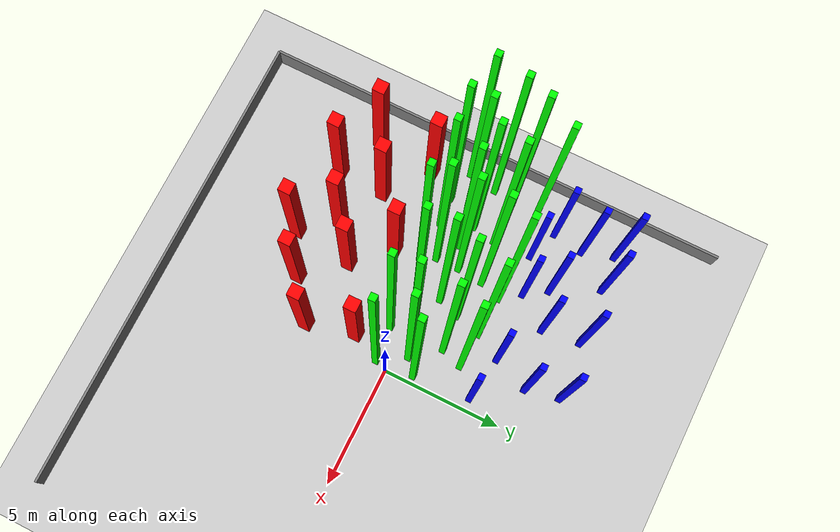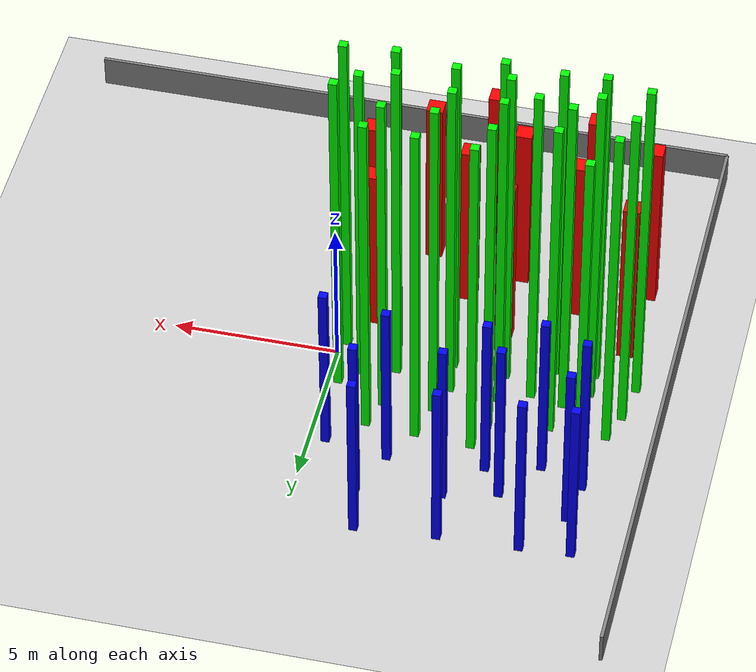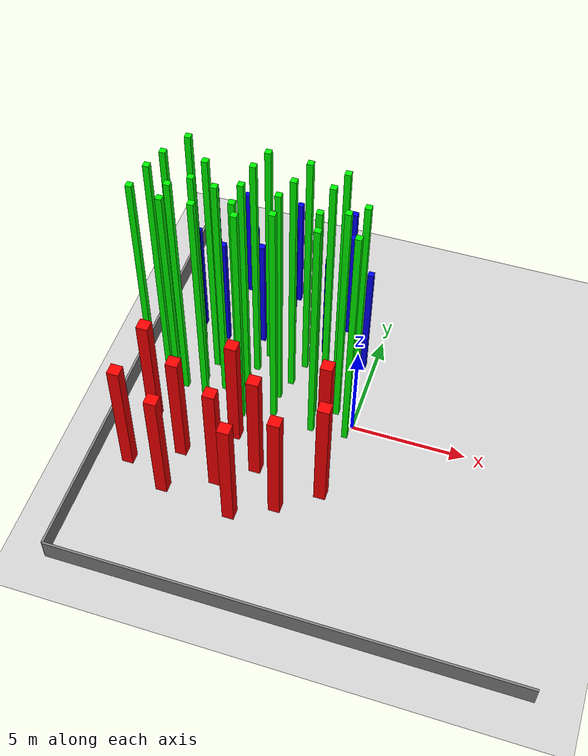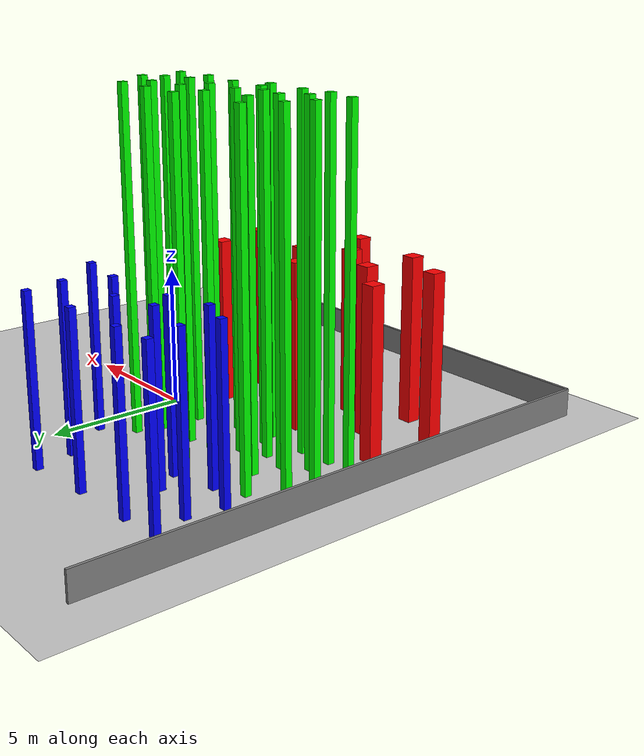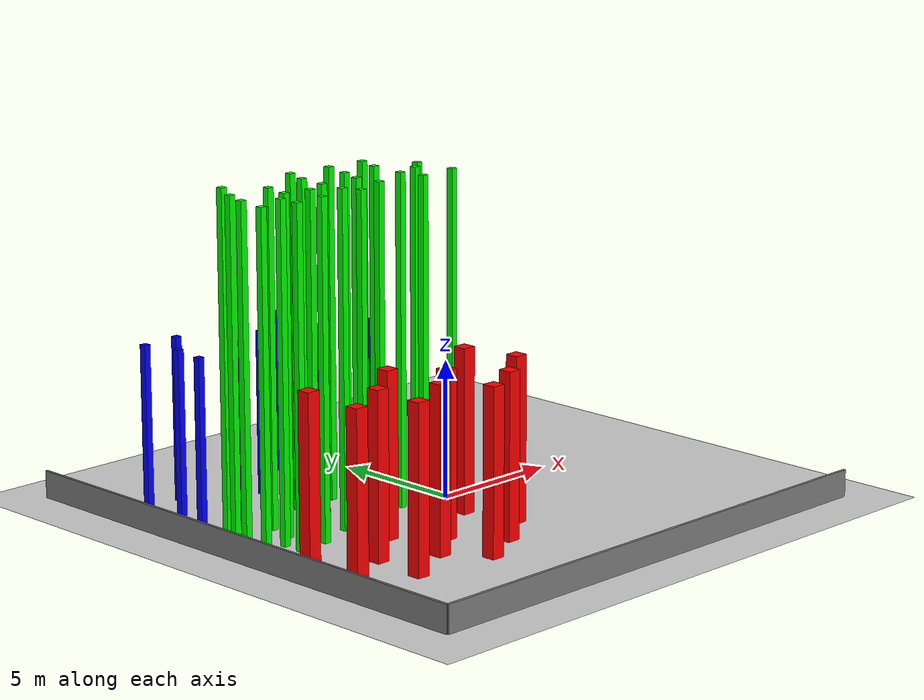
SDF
<sdf version="1.9">
 <world name="Penglai">
  <model name="ground_plane">
   <static>true</static>
   <link name="link">
    <collision name="collision">
     <geometry><plane><normal>0 0 1</normal><size>100 100</size></plane></geometry>
    </collision>
    <visual name="visual">
     <geometry><plane><normal>0 0 1</normal><size>100 100</size></plane></geometry>
     <material>
      <ambient>0.8 0.8 0.8 1</ambient>
      <diffuse>0.8 0.8 0.8 1</diffuse>
      <specular>0.8 0.8 0.8 1</specular>
     </material>
    </visual>
    <inertial>
     <mass>1</mass>
     <inertia><ixx>1</ixx><ixy>0</ixy><ixz>0</ixz><iyy>1</iyy><iyz>0</iyz><izz>1</izz></inertia>
    </inertial>
   </link>
  </model>
  <model name="wall_1">
   <static>true</static>
   <type>wall</type>
   <pose>0.000000 -10.000000 0.500000 0 0 0.000000</pose>
   <link name="link">
    <collision name="collision">
     <geometry><box><size>20.000000 0.100000 1.000000</size></box></geometry>
    </collision>
    <visual name="visual">
     <geometry><box><size>20.000000 0.100000 1.000000</size></box></geometry>
     <material><diffuse>0.5 0.5 0.5 1</diffuse></material>
    </visual>
   </link>
  </model>
  <model name="wall_4">
   <static>true</static>
   <type>wall</type>
   <pose>-10.000000 0.000000 0.500000 0 0 -1.570796</pose>
   <link name="link">
    <collision name="collision">
     <geometry><box><size>20.000000 0.100000 1.000000</size></box></geometry>
    </collision>
    <visual name="visual">
     <geometry><box><size>20.000000 0.100000 1.000000</size></box></geometry>
     <material><diffuse>0.5 0.5 0.5 1</diffuse></material>
    </visual>
   </link>
  </model>
  <model name="box_1">
   <static>true</static>
   <type>box</type>
   <pose>-4.300000 4.900000 3.000000 0 0 0</pose>
   <link name="link">
    <collision name="collision">
     <geometry><box><size>0.250000 0.250000 6.000000</size></box></geometry>
    </collision>
    <visual name="visual">
     <geometry><box><size>0.250000 0.250000 6.000000</size></box></geometry>
     <material><diffuse>0 0 1 1</diffuse></material>
    </visual>
   </link>
  </model>
  <model name="box_2">
   <static>true</static>
   <type>box</type>
   <pose>-4.500000 6.500000 3.000000 0 0 0</pose>
   <link name="link">
    <collision name="collision">
     <geometry><box><size>0.250000 0.250000 6.000000</size></box></geometry>
    </collision>
    <visual name="visual">
     <geometry><box><size>0.250000 0.250000 6.000000</size></box></geometry>
     <material><diffuse>0 0 1 1</diffuse></material>
    </visual>
   </link>
  </model>
  <model name="box_3">
   <static>true</static>
   <type>box</type>
   <pose>-5.900000 4.500000 3.000000 0 0 0</pose>
   <link name="link">
    <collision name="collision">
     <geometry><box><size>0.250000 0.250000 6.000000</size></box></geometry>
    </collision>
    <visual name="visual">
     <geometry><box><size>0.250000 0.250000 6.000000</size></box></geometry>
     <material><diffuse>0 0 1 1</diffuse></material>
    </visual>
   </link>
  </model>
  <model name="box_4">
   <static>true</static>
   <type>box</type>
   <pose>-2.400000 3.800000 3.000000 0 0 0</pose>
   <link name="link">
    <collision name="collision">
     <geometry><box><size>0.250000 0.250000 6.000000</size></box></geometry>
    </collision>
    <visual name="visual">
     <geometry><box><size>0.250000 0.250000 6.000000</size></box></geometry>
     <material><diffuse>0 0 1 1</diffuse></material>
    </visual>
   </link>
  </model>
  <model name="box_5">
   <static>true</static>
   <type>box</type>
   <pose>-1.800000 5.300000 3.000000 0 0 0</pose>
   <link name="link">
    <collision name="collision">
     <geometry><box><size>0.250000 0.250000 6.000000</size></box></geometry>
    </collision>
    <visual name="visual">
     <geometry><box><size>0.250000 0.250000 6.000000</size></box></geometry>
     <material><diffuse>0 0 1 1</diffuse></material>
    </visual>
   </link>
  </model>
  <model name="box_17">
   <static>true</static>
   <type>box</type>
   <pose>-6.900000 6.400000 3.000000 0 0 0</pose>
   <link name="link">
    <collision name="collision">
     <geometry><box><size>0.250000 0.250000 6.000000</size></box></geometry>
    </collision>
    <visual name="visual">
     <geometry><box><size>0.250000 0.250000 6.000000</size></box></geometry>
     <material><diffuse>0 0 1 1</diffuse></material>
    </visual>
   </link>
  </model>
  <model name="box_18">
   <static>true</static>
   <type>box</type>
   <pose>-8.000000 5.000000 3.000000 0 0 0</pose>
   <link name="link">
    <collision name="collision">
     <geometry><box><size>0.250000 0.250000 6.000000</size></box></geometry>
    </collision>
    <visual name="visual">
     <geometry><box><size>0.250000 0.250000 6.000000</size></box></geometry>
     <material><diffuse>0 0 1 1</diffuse></material>
    </visual>
   </link>
  </model>
  <model name="box_19">
   <static>true</static>
   <type>box</type>
   <pose>-8.400000 6.300000 3.000000 0 0 0</pose>
   <link name="link">
    <collision name="collision">
     <geometry><box><size>0.250000 0.250000 6.000000</size></box></geometry>
    </collision>
    <visual name="visual">
     <geometry><box><size>0.250000 0.250000 6.000000</size></box></geometry>
     <material><diffuse>0 0 1 1</diffuse></material>
    </visual>
   </link>
  </model>
  <model name="box_20">
   <static>true</static>
   <type>box</type>
   <pose>-8.200000 3.700000 3.000000 0 0 0</pose>
   <link name="link">
    <collision name="collision">
     <geometry><box><size>0.250000 0.250000 6.000000</size></box></geometry>
    </collision>
    <visual name="visual">
     <geometry><box><size>0.250000 0.250000 6.000000</size></box></geometry>
     <material><diffuse>0 0 1 1</diffuse></material>
    </visual>
   </link>
  </model>
  <model name="box_21">
   <static>true</static>
   <type>box</type>
   <pose>-5.300000 3.600000 3.000000 0 0 0</pose>
   <link name="link">
    <collision name="collision">
     <geometry><box><size>0.250000 0.250000 6.000000</size></box></geometry>
    </collision>
    <visual name="visual">
     <geometry><box><size>0.250000 0.250000 6.000000</size></box></geometry>
     <material><diffuse>0 0 1 1</diffuse></material>
    </visual>
   </link>
  </model>
  <model name="box_22">
   <static>true</static>
   <type>box</type>
   <pose>-2.100000 6.700000 3.000000 0 0 0</pose>
   <link name="link">
    <collision name="collision">
     <geometry><box><size>0.250000 0.250000 6.000000</size></box></geometry>
    </collision>
    <visual name="visual">
     <geometry><box><size>0.250000 0.250000 6.000000</size></box></geometry>
     <material><diffuse>0 0 1 1</diffuse></material>
    </visual>
   </link>
  </model>
  <model name="box_23">
   <static>true</static>
   <type>box</type>
   <pose>-0.500000 3.500000 3.000000 0 0 0</pose>
   <link name="link">
    <collision name="collision">
     <geometry><box><size>0.250000 0.250000 6.000000</size></box></geometry>
    </collision>
    <visual name="visual">
     <geometry><box><size>0.250000 0.250000 6.000000</size></box></geometry>
     <material><diffuse>0 0 1 1</diffuse></material>
    </visual>
   </link>
  </model>
  <model name="box_28">
   <static>true</static>
   <type>box</type>
   <pose>-6.900000 3.200000 3.000000 0 0 0</pose>
   <link name="link">
    <collision name="collision">
     <geometry><box><size>0.250000 0.250000 6.000000</size></box></geometry>
    </collision>
    <visual name="visual">
     <geometry><box><size>0.250000 0.250000 6.000000</size></box></geometry>
     <material><diffuse>0 0 1 1</diffuse></material>
    </visual>
   </link>
  </model>
  <model name="box_31">
   <static>true</static>
   <type>box</type>
   <pose>-8.500000 1.600000 6.000000 0 0 0</pose>
   <link name="link">
    <collision name="collision">
     <geometry><box><size>0.250000 0.250000 12.000000</size></box></geometry>
    </collision>
    <visual name="visual">
     <geometry><box><size>0.250000 0.250000 12.000000</size></box></geometry>
     <material><diffuse>0 1 0 1</diffuse></material>
    </visual>
   </link>
  </model>
  <model name="box_32">
   <static>true</static>
   <type>box</type>
   <pose>-6.800000 1.600000 6.000000 0 0 0</pose>
   <link name="link">
    <collision name="collision">
     <geometry><box><size>0.250000 0.250000 12.000000</size></box></geometry>
    </collision>
    <visual name="visual">
     <geometry><box><size>0.250000 0.250000 12.000000</size></box></geometry>
     <material><diffuse>0 1 0 1</diffuse></material>
    </visual>
   </link>
  </model>
  <model name="box_33">
   <static>true</static>
   <type>box</type>
   <pose>-7.700000 -0.000000 6.000000 0 0 0</pose>
   <link name="link">
    <collision name="collision">
     <geometry><box><size>0.250000 0.250000 12.000000</size></box></geometry>
    </collision>
    <visual name="visual">
     <geometry><box><size>0.250000 0.250000 12.000000</size></box></geometry>
     <material><diffuse>0 1 0 1</diffuse></material>
    </visual>
   </link>
  </model>
  <model name="box_34">
   <static>true</static>
   <type>box</type>
   <pose>-5.000000 1.900000 6.000000 0 0 0</pose>
   <link name="link">
    <collision name="collision">
     <geometry><box><size>0.250000 0.250000 12.000000</size></box></geometry>
    </collision>
    <visual name="visual">
     <geometry><box><size>0.250000 0.250000 12.000000</size></box></geometry>
     <material><diffuse>0 1 0 1</diffuse></material>
    </visual>
   </link>
  </model>
  <model name="box_35">
   <static>true</static>
   <type>box</type>
   <pose>-5.100000 0.800000 6.000000 0 0 0</pose>
   <link name="link">
    <collision name="collision">
     <geometry><box><size>0.250000 0.250000 12.000000</size></box></geometry>
    </collision>
    <visual name="visual">
     <geometry><box><size>0.250000 0.250000 12.000000</size></box></geometry>
     <material><diffuse>0 1 0 1</diffuse></material>
    </visual>
   </link>
  </model>
  <model name="box_36">
   <static>true</static>
   <type>box</type>
   <pose>-1.800000 1.700000 6.000000 0 0 0</pose>
   <link name="link">
    <collision name="collision">
     <geometry><box><size>0.250000 0.250000 12.000000</size></box></geometry>
    </collision>
    <visual name="visual">
     <geometry><box><size>0.250000 0.250000 12.000000</size></box></geometry>
     <material><diffuse>0 1 0 1</diffuse></material>
    </visual>
   </link>
  </model>
  <model name="box_37">
   <static>true</static>
   <type>box</type>
   <pose>-3.300000 1.600000 6.000000 0 0 0</pose>
   <link name="link">
    <collision name="collision">
     <geometry><box><size>0.250000 0.250000 12.000000</size></box></geometry>
    </collision>
    <visual name="visual">
     <geometry><box><size>0.250000 0.250000 12.000000</size></box></geometry>
     <material><diffuse>0 1 0 1</diffuse></material>
    </visual>
   </link>
  </model>
  <model name="box_38">
   <static>true</static>
   <type>box</type>
   <pose>-3.600000 0.700000 6.000000 0 0 0</pose>
   <link name="link">
    <collision name="collision">
     <geometry><box><size>0.250000 0.250000 12.000000</size></box></geometry>
    </collision>
    <visual name="visual">
     <geometry><box><size>0.250000 0.250000 12.000000</size></box></geometry>
     <material><diffuse>0 1 0 1</diffuse></material>
    </visual>
   </link>
  </model>
  <model name="box_39">
   <static>true</static>
   <type>box</type>
   <pose>-5.100000 -0.200000 6.000000 0 0 0</pose>
   <link name="link">
    <collision name="collision">
     <geometry><box><size>0.250000 0.250000 12.000000</size></box></geometry>
    </collision>
    <visual name="visual">
     <geometry><box><size>0.250000 0.250000 12.000000</size></box></geometry>
     <material><diffuse>0 1 0 1</diffuse></material>
    </visual>
   </link>
  </model>
  <model name="box_40">
   <static>true</static>
   <type>box</type>
   <pose>-6.000000 0.400000 6.000000 0 0 0</pose>
   <link name="link">
    <collision name="collision">
     <geometry><box><size>0.250000 0.250000 12.000000</size></box></geometry>
    </collision>
    <visual name="visual">
     <geometry><box><size>0.250000 0.250000 12.000000</size></box></geometry>
     <material><diffuse>0 1 0 1</diffuse></material>
    </visual>
   </link>
  </model>
  <model name="box_41">
   <static>true</static>
   <type>box</type>
   <pose>-8.800000 0.700000 6.000000 0 0 0</pose>
   <link name="link">
    <collision name="collision">
     <geometry><box><size>0.250000 0.250000 12.000000</size></box></geometry>
    </collision>
    <visual name="visual">
     <geometry><box><size>0.250000 0.250000 12.000000</size></box></geometry>
     <material><diffuse>0 1 0 1</diffuse></material>
    </visual>
   </link>
  </model>
  <model name="box_42">
   <static>true</static>
   <type>box</type>
   <pose>-9.000000 -0.500000 6.000000 0 0 0</pose>
   <link name="link">
    <collision name="collision">
     <geometry><box><size>0.250000 0.250000 12.000000</size></box></geometry>
    </collision>
    <visual name="visual">
     <geometry><box><size>0.250000 0.250000 12.000000</size></box></geometry>
     <material><diffuse>0 1 0 1</diffuse></material>
    </visual>
   </link>
  </model>
  <model name="box_43">
   <static>true</static>
   <type>box</type>
   <pose>-6.500000 -0.700000 6.000000 0 0 0</pose>
   <link name="link">
    <collision name="collision">
     <geometry><box><size>0.250000 0.250000 12.000000</size></box></geometry>
    </collision>
    <visual name="visual">
     <geometry><box><size>0.250000 0.250000 12.000000</size></box></geometry>
     <material><diffuse>0 1 0 1</diffuse></material>
    </visual>
   </link>
  </model>
  <model name="box_44">
   <static>true</static>
   <type>box</type>
   <pose>-7.000000 0.600000 6.000000 0 0 0</pose>
   <link name="link">
    <collision name="collision">
     <geometry><box><size>0.250000 0.250000 12.000000</size></box></geometry>
    </collision>
    <visual name="visual">
     <geometry><box><size>0.250000 0.250000 12.000000</size></box></geometry>
     <material><diffuse>0 1 0 1</diffuse></material>
    </visual>
   </link>
  </model>
  <model name="box_45">
   <static>true</static>
   <type>box</type>
   <pose>-7.700000 -0.800000 6.000000 0 0 0</pose>
   <link name="link">
    <collision name="collision">
     <geometry><box><size>0.250000 0.250000 12.000000</size></box></geometry>
    </collision>
    <visual name="visual">
     <geometry><box><size>0.250000 0.250000 12.000000</size></box></geometry>
     <material><diffuse>0 1 0 1</diffuse></material>
    </visual>
   </link>
  </model>
  <model name="box_46">
   <static>true</static>
   <type>box</type>
   <pose>-4.800000 -0.800000 6.000000 0 0 0</pose>
   <link name="link">
    <collision name="collision">
     <geometry><box><size>0.250000 0.250000 12.000000</size></box></geometry>
    </collision>
    <visual name="visual">
     <geometry><box><size>0.250000 0.250000 12.000000</size></box></geometry>
     <material><diffuse>0 1 0 1</diffuse></material>
    </visual>
   </link>
  </model>
  <model name="box_47">
   <static>true</static>
   <type>box</type>
   <pose>-3.500000 -0.300000 6.000000 0 0 0</pose>
   <link name="link">
    <collision name="collision">
     <geometry><box><size>0.250000 0.250000 12.000000</size></box></geometry>
    </collision>
    <visual name="visual">
     <geometry><box><size>0.250000 0.250000 12.000000</size></box></geometry>
     <material><diffuse>0 1 0 1</diffuse></material>
    </visual>
   </link>
  </model>
  <model name="box_48">
   <static>true</static>
   <type>box</type>
   <pose>-1.700000 -0.600000 6.000000 0 0 0</pose>
   <link name="link">
    <collision name="collision">
     <geometry><box><size>0.250000 0.250000 12.000000</size></box></geometry>
    </collision>
    <visual name="visual">
     <geometry><box><size>0.250000 0.250000 12.000000</size></box></geometry>
     <material><diffuse>0 1 0 1</diffuse></material>
    </visual>
   </link>
  </model>
  <model name="box_49">
   <static>true</static>
   <type>box</type>
   <pose>-1.900000 0.300000 6.000000 0 0 0</pose>
   <link name="link">
    <collision name="collision">
     <geometry><box><size>0.250000 0.250000 12.000000</size></box></geometry>
    </collision>
    <visual name="visual">
     <geometry><box><size>0.250000 0.250000 12.000000</size></box></geometry>
     <material><diffuse>0 1 0 1</diffuse></material>
    </visual>
   </link>
  </model>
  <model name="box_50">
   <static>true</static>
   <type>box</type>
   <pose>-0.300000 1.100000 6.000000 0 0 0</pose>
   <link name="link">
    <collision name="collision">
     <geometry><box><size>0.250000 0.250000 12.000000</size></box></geometry>
    </collision>
    <visual name="visual">
     <geometry><box><size>0.250000 0.250000 12.000000</size></box></geometry>
     <material><diffuse>0 1 0 1</diffuse></material>
    </visual>
   </link>
  </model>
  <model name="box_58">
   <static>true</static>
   <type>box</type>
   <pose>-0.200000 -0.500000 6.000000 0 0 0</pose>
   <link name="link">
    <collision name="collision">
     <geometry><box><size>0.250000 0.250000 12.000000</size></box></geometry>
    </collision>
    <visual name="visual">
     <geometry><box><size>0.250000 0.250000 12.000000</size></box></geometry>
     <material><diffuse>0 1 0 1</diffuse></material>
    </visual>
   </link>
  </model>
  <model name="box_75">
   <static>true</static>
   <type>box</type>
   <pose>-1.500000 2.600000 6.000000 0 0 0</pose>
   <link name="link">
    <collision name="collision">
     <geometry><box><size>0.250000 0.250000 12.000000</size></box></geometry>
    </collision>
    <visual name="visual">
     <geometry><box><size>0.250000 0.250000 12.000000</size></box></geometry>
     <material><diffuse>0 1 0 1</diffuse></material>
    </visual>
   </link>
  </model>
  <model name="box_76">
   <static>true</static>
   <type>box</type>
   <pose>-3.000000 2.700000 6.000000 0 0 0</pose>
   <link name="link">
    <collision name="collision">
     <geometry><box><size>0.250000 0.250000 12.000000</size></box></geometry>
    </collision>
    <visual name="visual">
     <geometry><box><size>0.250000 0.250000 12.000000</size></box></geometry>
     <material><diffuse>0 1 0 1</diffuse></material>
    </visual>
   </link>
  </model>
  <model name="box_77">
   <static>true</static>
   <type>box</type>
   <pose>-7.900000 2.700000 6.000000 0 0 0</pose>
   <link name="link">
    <collision name="collision">
     <geometry><box><size>0.250000 0.250000 12.000000</size></box></geometry>
    </collision>
    <visual name="visual">
     <geometry><box><size>0.250000 0.250000 12.000000</size></box></geometry>
     <material><diffuse>0 1 0 1</diffuse></material>
    </visual>
   </link>
  </model>
  <model name="box_78">
   <static>true</static>
   <type>box</type>
   <pose>-4.700000 2.800000 6.000000 0 0 0</pose>
   <link name="link">
    <collision name="collision">
     <geometry><box><size>0.250000 0.250000 12.000000</size></box></geometry>
    </collision>
    <visual name="visual">
     <geometry><box><size>0.250000 0.250000 12.000000</size></box></geometry>
     <material><diffuse>0 1 0 1</diffuse></material>
    </visual>
   </link>
  </model>
  <model name="box_79">
   <static>true</static>
   <type>box</type>
   <pose>-0.900000 0.600000 6.000000 0 0 0</pose>
   <link name="link">
    <collision name="collision">
     <geometry><box><size>0.250000 0.250000 12.000000</size></box></geometry>
    </collision>
    <visual name="visual">
     <geometry><box><size>0.250000 0.250000 12.000000</size></box></geometry>
     <material><diffuse>0 1 0 1</diffuse></material>
    </visual>
   </link>
  </model>
  <model name="box_81">
   <static>true</static>
   <type>box</type>
   <pose>-8.400000 -2.000000 3.000000 0 0 0</pose>
   <link name="link">
    <collision name="collision">
     <geometry><box><size>0.500000 0.500000 6.000000</size></box></geometry>
    </collision>
    <visual name="visual">
     <geometry><box><size>0.500000 0.500000 6.000000</size></box></geometry>
     <material><diffuse>1 0 0 1</diffuse></material>
    </visual>
   </link>
  </model>
  <model name="box_82">
   <static>true</static>
   <type>box</type>
   <pose>-6.600000 -3.400000 3.000000 0 0 0</pose>
   <link name="link">
    <collision name="collision">
     <geometry><box><size>0.500000 0.500000 6.000000</size></box></geometry>
    </collision>
    <visual name="visual">
     <geometry><box><size>0.500000 0.500000 6.000000</size></box></geometry>
     <material><diffuse>1 0 0 1</diffuse></material>
    </visual>
   </link>
  </model>
  <model name="box_83">
   <static>true</static>
   <type>box</type>
   <pose>-4.700000 -4.400000 3.000000 0 0 0</pose>
   <link name="link">
    <collision name="collision">
     <geometry><box><size>0.500000 0.500000 6.000000</size></box></geometry>
    </collision>
    <visual name="visual">
     <geometry><box><size>0.500000 0.500000 6.000000</size></box></geometry>
     <material><diffuse>1 0 0 1</diffuse></material>
    </visual>
   </link>
  </model>
  <model name="box_84">
   <static>true</static>
   <type>box</type>
   <pose>-4.700000 -1.900000 3.000000 0 0 0</pose>
   <link name="link">
    <collision name="collision">
     <geometry><box><size>0.500000 0.500000 6.000000</size></box></geometry>
    </collision>
    <visual name="visual">
     <geometry><box><size>0.500000 0.500000 6.000000</size></box></geometry>
     <material><diffuse>1 0 0 1</diffuse></material>
    </visual>
   </link>
  </model>
  <model name="box_85">
   <static>true</static>
   <type>box</type>
   <pose>-8.600000 -4.500000 3.000000 0 0 0</pose>
   <link name="link">
    <collision name="collision">
     <geometry><box><size>0.500000 0.500000 6.000000</size></box></geometry>
    </collision>
    <visual name="visual">
     <geometry><box><size>0.500000 0.500000 6.000000</size></box></geometry>
     <material><diffuse>1 0 0 1</diffuse></material>
    </visual>
   </link>
  </model>
  <model name="box_86">
   <static>true</static>
   <type>box</type>
   <pose>-3.300000 -3.300000 3.000000 0 0 0</pose>
   <link name="link">
    <collision name="collision">
     <geometry><box><size>0.500000 0.500000 6.000000</size></box></geometry>
    </collision>
    <visual name="visual">
     <geometry><box><size>0.500000 0.500000 6.000000</size></box></geometry>
     <material><diffuse>1 0 0 1</diffuse></material>
    </visual>
   </link>
  </model>
  <model name="box_87">
   <static>true</static>
   <type>box</type>
   <pose>-0.800000 -1.700000 3.000000 0 0 0</pose>
   <link name="link">
    <collision name="collision">
     <geometry><box><size>0.500000 0.500000 6.000000</size></box></geometry>
    </collision>
    <visual name="visual">
     <geometry><box><size>0.500000 0.500000 6.000000</size></box></geometry>
     <material><diffuse>1 0 0 1</diffuse></material>
    </visual>
   </link>
  </model>
  <model name="box_88">
   <static>true</static>
   <type>box</type>
   <pose>-0.300000 -3.700000 3.000000 0 0 0</pose>
   <link name="link">
    <collision name="collision">
     <geometry><box><size>0.500000 0.500000 6.000000</size></box></geometry>
    </collision>
    <visual name="visual">
     <geometry><box><size>0.500000 0.500000 6.000000</size></box></geometry>
     <material><diffuse>1 0 0 1</diffuse></material>
    </visual>
   </link>
  </model>
  <model name="box_96">
   <static>true</static>
   <type>box</type>
   <pose>-1.900000 -4.900000 3.000000 0 0 0</pose>
   <link name="link">
    <collision name="collision">
     <geometry><box><size>0.500000 0.500000 6.000000</size></box></geometry>
    </collision>
    <visual name="visual">
     <geometry><box><size>0.500000 0.500000 6.000000</size></box></geometry>
     <material><diffuse>1 0 0 1</diffuse></material>
    </visual>
   </link>
  </model>
  <model name="box_97">
   <static>true</static>
   <type>box</type>
   <pose>-6.700000 -5.400000 3.000000 0 0 0</pose>
   <link name="link">
    <collision name="collision">
     <geometry><box><size>0.500000 0.500000 6.000000</size></box></geometry>
    </collision>
    <visual name="visual">
     <geometry><box><size>0.500000 0.500000 6.000000</size></box></geometry>
     <material><diffuse>1 0 0 1</diffuse></material>
    </visual>
   </link>
  </model>
  <model name="box_100">
   <static>true</static>
   <type>box</type>
   <pose>-3.600000 -5.800000 3.000000 0 0 0</pose>
   <link name="link">
    <collision name="collision">
     <geometry><box><size>0.500000 0.500000 6.000000</size></box></geometry>
    </collision>
    <visual name="visual">
     <geometry><box><size>0.500000 0.500000 6.000000</size></box></geometry>
     <material><diffuse>1 0 0 1</diffuse></material>
    </visual>
   </link>
  </model>
 </world>
</sdf>
